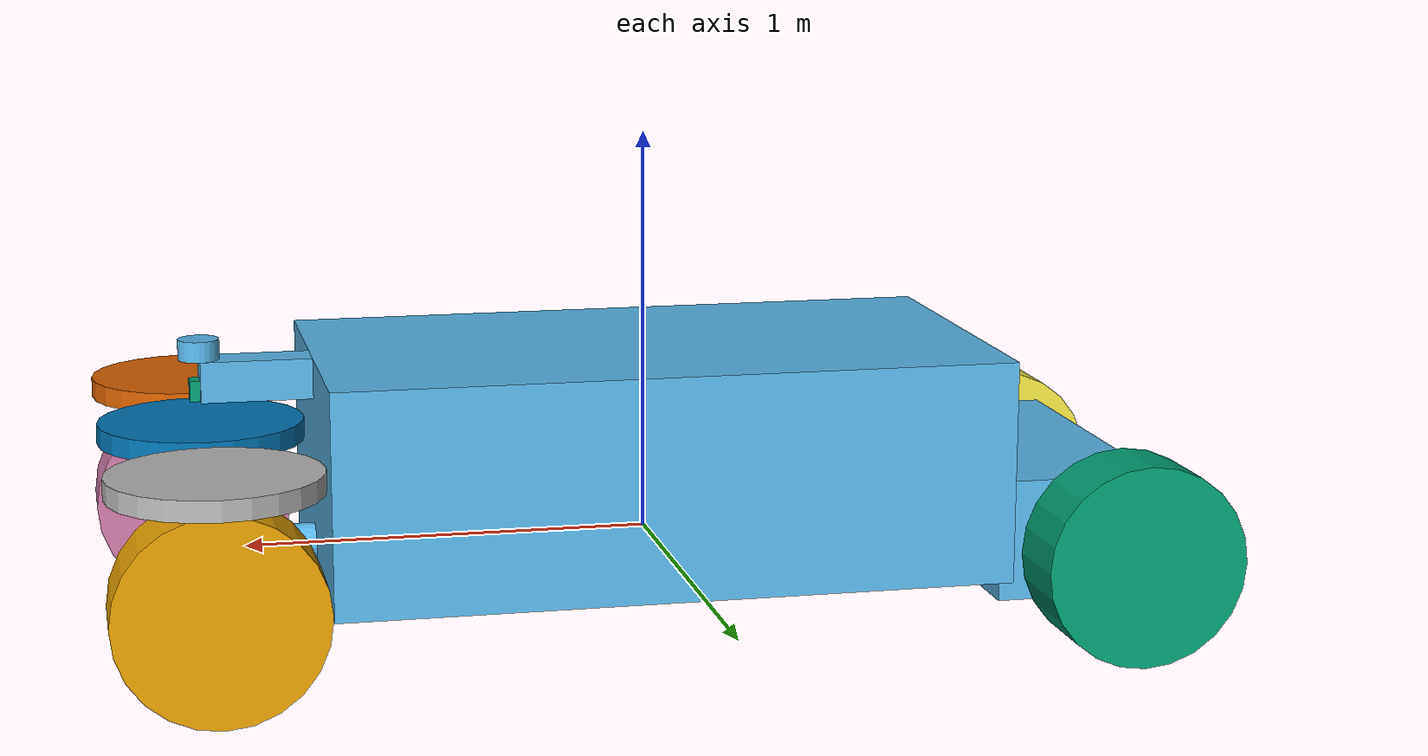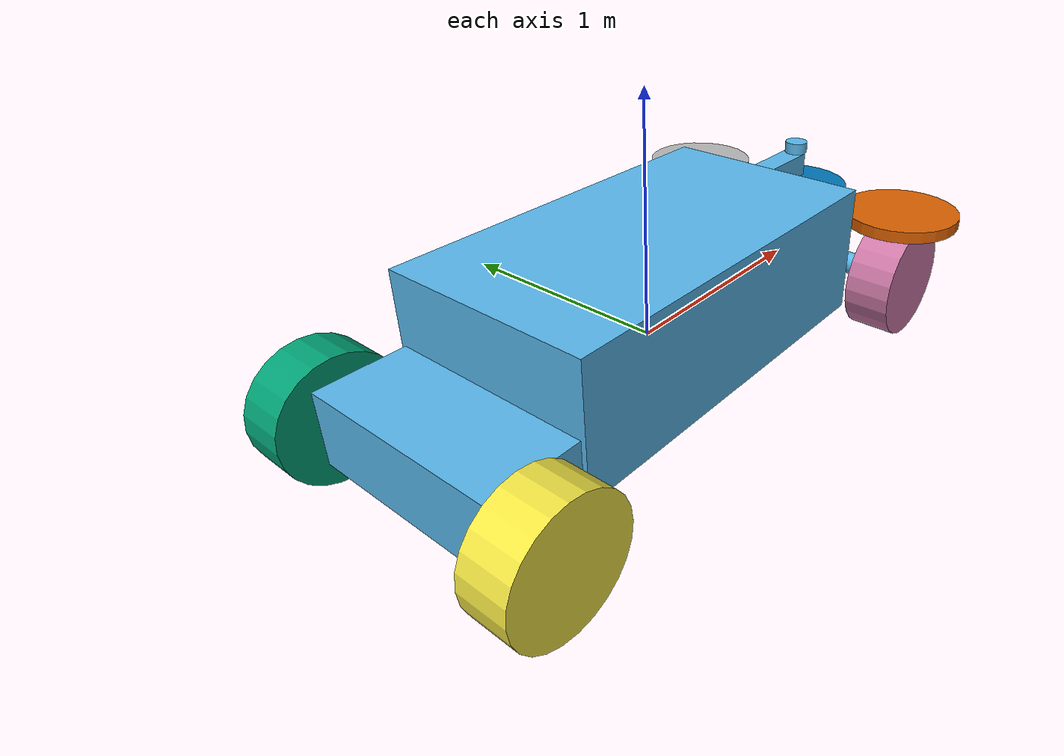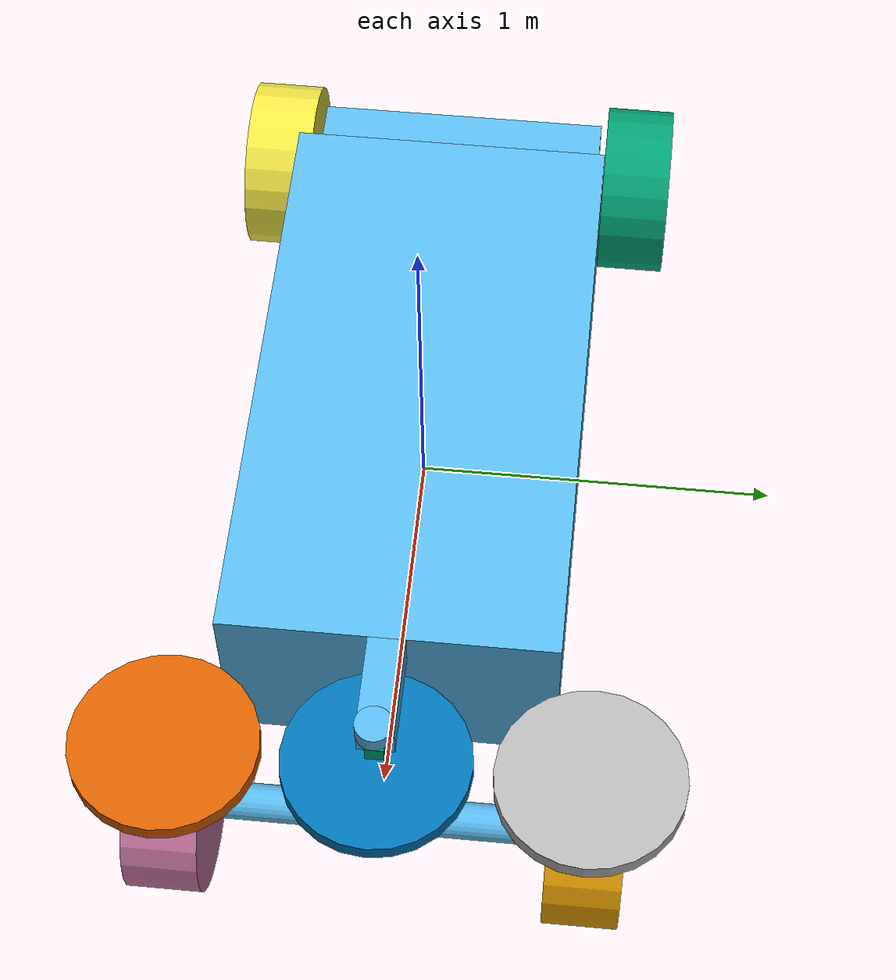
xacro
<robot name="car_like_robot">

   <!-- Base Footprint -->
   <link name="base_footprint"/>
	<!-- Base Link -->

	<link name="base_link">
		<inertial>
			<mass value="150.0" />
			<inertia ixx="0.1" ixy="0" ixz="0" iyy="0.1" iyz="0" izz="0.1" />
		</inertial>
		<visual>
			<origin xyz="0.0 0 0.2" rpy="0 0 0" />

			<geometry>
				<box size="1.66 0.9 0.55" />
			</geometry>
		</visual>
		<collision>
			<origin xyz="0.0 0 0.2" rpy="0 0 0" />

			<geometry>
				<box size="1.66 0.9 0.55" />
			</geometry>
		</collision>
		<!-- back box -->
      <visual>
			<origin xyz="-1.0 0 0.025" rpy="0 0 0" />
			<geometry>
				<box size="0.4 0.86 0.3" />
			</geometry>
		</visual>
		<collision>
			<origin xyz="-0.82 0 0.025" rpy="0 0 0" />
			<geometry>
				<box size="0.4 0.8 0.3" />
			</geometry>
		</collision>

      <visual>
			<origin xyz="1.1 0 0.0" rpy="1.57 0 0" />
			<geometry>
            <cylinder radius="0.05" length="0.9"/>
			</geometry>
		</visual>

      <visual>
			<origin xyz="0.85 0 0.0" rpy="0.0 1.57 0" />
			<geometry>
            <cylinder radius="0.05" length="0.45"/>
			</geometry>
		</visual>

      <visual>
			<origin xyz="0.85 0 0.425" rpy="0.0 1.57 0" />
			<geometry>
            <box size="0.1 0.1 0.5"/>
			</geometry>
		</visual>
  	</link>

	<joint name="base" type="fixed">
      <parent link="base_footprint"/>
      <child link="base_link"/>
      <origin xyz="0.0 0.0 0.0" rpy="0.0 0.0 0.0"/>
   </joint>

	<!-- Rear Left Wheel -->
	<link name="rear_left_wheel">
		<inertial>
			<mass value="1.0" />
			<inertia ixx="0.01" ixy="0" ixz="0" iyy="0.01" iyz="0" izz="0.01" />
		</inertial>
		<visual>
			<geometry>
				<cylinder radius="0.25" length="0.20" />
			</geometry>
		</visual>
		<collision>
			<geometry>
				<cylinder radius="0.25" length="0.20" />
			</geometry>
		</collision>
	</link>

	<joint name="rear_left_wheel_joint" type="continuous">
		<parent link="base_link" />
		<child link="rear_left_wheel" />
		<origin xyz="-1.1 0.55 0" rpy="1.57 0 0" />
		<axis xyz="0 0 1" />
	</joint>

	<!-- Rear Right Wheel -->
	<link name="rear_right_wheel">
		<inertial>
			<mass value="1.0" />
			<inertia ixx="0.01" ixy="0" ixz="0" iyy="0.01" iyz="0" izz="0.01" />
		</inertial>
		<visual>
			<geometry>
				<cylinder radius="0.25" length="0.20" />
			</geometry>
		</visual>
		<collision>
			<geometry>
				<cylinder radius="0.25" length="0.20" />
			</geometry>
		</collision>
	</link>

	<joint name="rear_right_wheel_joint" type="continuous">
		<parent link="base_link" />
		<child link="rear_right_wheel" />
		<origin xyz="-1.1 -0.55 0" rpy="1.57 0 0" />
		<axis xyz="0 0 1" />
	</joint>

	<transmission name="rear_left_wheel_joint_trans">
	<type>transmission_interface/SimpleTransmission</type>
	<actuator name="rear_left_wheel_joint_motor">
		<mechanicalReduction>1</mechanicalReduction>
		<hardwareInterface>hardware_interface/VelocityJointInterface</hardwareInterface>
	</actuator>
	<joint name="rear_left_wheel_joint">
		<hardwareInterface>hardware_interface/VelocityJointInterface</hardwareInterface>
	</joint>
	</transmission>

	<transmission name="rear_right_wheel_joint_trans">
	<type>transmission_interface/SimpleTransmission</type>
	<actuator name="rear_right_wheel_joint_motor">
		<mechanicalReduction>1</mechanicalReduction>
		<hardwareInterface>hardware_interface/VelocityJointInterface</hardwareInterface>
	</actuator>
	<joint name="rear_right_wheel_joint">
		<hardwareInterface>hardware_interface/VelocityJointInterface</hardwareInterface>
	</joint>
	</transmission>

	<!-- Front steer -->
	<link name="front_steering_wheel">
		<inertial>
			<mass value="1.0" />
			<inertia ixx="0.01" ixy="0" ixz="0" iyy="0.01" iyz="0" izz="0.01" />
		</inertial>
		<visual>
			<geometry>
				<cylinder radius="0.25" length="0.05" />
			</geometry>
		</visual>
		<collision>
			<geometry>
				<cylinder radius="0.1" length="0.05" />
			</geometry>
		</collision>
	</link>

	<joint name="front_steer_wheel_joint" type="revolute">
      <parent link="base_link" />
		<child link="front_steering_wheel" />
		<origin xyz="1.1 0.0 0.3" rpy="0 0 0" />
		<axis xyz="0 0 1" />
      <limit lower="-0.3" upper="0.3" velocity="5.0" effort="10.0"/>
	</joint>

	<link name="front_right_steer_link">
      <visual>
        <origin xyz="0 0 0" rpy="0 0 0"/>
        <geometry>
          <cylinder radius="0.25" length="0.05"/>
        </geometry>
      </visual>
      <collision>
        <origin xyz="0 0 0" rpy="0 0 0"/>
        <geometry>
          <cylinder radius="0.25" length="0.05"/>
        </geometry>
      </collision>
		<inertial>
			<mass value="1.0" />
			<inertia ixx="0.01" ixy="0" ixz="0" iyy="0.01" iyz="0" izz="0.01" />
		</inertial>
    </link>
	 <joint name="front_right_steer_joint" type="revolute">
      <parent link="base_link"/>
      <child link="front_right_steer_link"/>
      <origin xyz="1.1 -0.55 0.3" rpy="0 0 0"/>
      <axis xyz="0 0 1"/>
      <limit effort="10"
             lower="-0.35" upper="0.35"
             velocity="5.0"/>
    </joint>

	<!-- Front Right Wheel -->
	<link name="front_right_wheel">
		<inertial>
			<mass value="1.0" />
			<inertia ixx="0.01" ixy="0" ixz="0" iyy="0.01" iyz="0" izz="0.01" />
		</inertial>
		<visual>
			<geometry>
				<cylinder radius="0.25" length="0.20" />
			</geometry>
		</visual>
		<collision>
			<geometry>
				<cylinder radius="0.25" length="0.20" />
			</geometry>
		</collision>
	</link>

	<joint name="front_right_wheel_joint" type="continuous">
      <parent link="front_right_steer_link" />
		<child link="front_right_wheel" />
		<origin xyz="0 0 -0.3" rpy="1.57 0 0" />
		<axis xyz="0 0 1" />
	</joint>

	<transmission name="front_right_steer_joint_trans">
      <type>transmission_interface/SimpleTransmission</type>
      <actuator name="front_right_steer_joint_motor">
        <mechanicalReduction>1</mechanicalReduction>
        <hardwareInterface>hardware_interface/PositionJointInterface</hardwareInterface>
      </actuator>
      <joint name="front_right_steer_joint">
        <hardwareInterface>hardware_interface/PositionJointInterface</hardwareInterface>
      </joint>
    </transmission>

    <transmission name="front_right_wheel_joint_trans">
      <type>transmission_interface/SimpleTransmission</type>
      <actuator name="front_right_wheel_joint_motor">
        <mechanicalReduction>1</mechanicalReduction>
        <hardwareInterface>hardware_interface/VelocityJointInterface</hardwareInterface>
      </actuator>
      <joint name="front_right_wheel_joint">
        <hardwareInterface>hardware_interface/VelocityJointInterface</hardwareInterface>
      </joint>
    </transmission>

	<!-- Front Left Wheel -->
	<link name="front_left_steer_link">
	<visual>
		<origin xyz="0 0 0" rpy="0 0 0"/>
		<geometry>
			<cylinder radius="0.25" length="0.05"/>
		</geometry>
	</visual>
	<collision>
		<origin xyz="0 0 0" rpy="0 0 0"/>
		<geometry>
			<cylinder radius="0.25" length="0.05"/>
		</geometry>
	</collision>
	<inertial>
		<mass value="1.0" />
		<inertia ixx="0.01" ixy="0" ixz="0" iyy="0.01" iyz="0" izz="0.01" />
	</inertial>
	</link>

	<joint name="front_left_steer_joint" type="revolute">
		<parent link="base_link"/>
		<child link="front_left_steer_link"/>
		<origin xyz="1.1 0.55 0.3" rpy="0 0 0"/>
		<axis xyz="0 0 1"/>
	<limit effort="10"
				lower="-0.35" upper="0.35"
				velocity="5.0"/>
	</joint>

	<link name="front_left_wheel">
		<inertial>
			<mass value="1.0" />
			<inertia ixx="0.01" ixy="0" ixz="0" iyy="0.01" iyz="0" izz="0.01" />
		</inertial>
		<visual>
			<geometry>
				<cylinder radius="0.25" length="0.20" />
			</geometry>
		</visual>
		<collision>
			<geometry>
				<cylinder radius="0.25" length="0.20" />
			</geometry>
		</collision>
	</link>

	 <joint name="front_left_wheel_joint" type="continuous">
		 <parent link="front_left_steer_link" />
		 <child link="front_left_wheel" />
		 <origin xyz="0 0 -0.3" rpy="1.57 0 0" />
		 <axis xyz="0 0 1" />
	 </joint>

	 <transmission name="front_left_steer_joint_trans">
      <type>transmission_interface/SimpleTransmission</type>
      <actuator name="front_left_steer_joint_motor">
        <mechanicalReduction>1</mechanicalReduction>
        <hardwareInterface>hardware_interface/PositionJointInterface</hardwareInterface>
      </actuator>
      <joint name="front_left_steer_joint">
        <hardwareInterface>hardware_interface/PositionJointInterface</hardwareInterface>
      </joint>
    </transmission>

    <transmission name="front_left_wheel_joint_trans">
      <type>transmission_interface/SimpleTransmission</type>
      <actuator name="front_left_wheel_joint_motor">
        <mechanicalReduction>1</mechanicalReduction>
        <hardwareInterface>hardware_interface/VelocityJointInterface</hardwareInterface>
      </actuator>
      <joint name="front_left_wheel_joint">
        <hardwareInterface>hardware_interface/VelocityJointInterface</hardwareInterface>
      </joint>
    </transmission>

	<!-- Joints -->
	<!-- Rear Wheels (fixed, as they do not steer) -->

	<!-- Front Wheels (Ackermann steering) -->

	<!-- 3D LiDAR -->
	<link name="lidar">
		<inertial>
			<mass value="0.5" />
			<inertia ixx="0.005" ixy="0" ixz="0" iyy="0.005" iyz="0" izz="0.005" />
		</inertial>
		<visual>
			<geometry>
				<cylinder radius="0.05" length="0.05"/>
			</geometry>
		</visual>
		<collision>
			<geometry>
				<cylinder radius="0.05" length="0.05"/>
			</geometry>
		</collision>
	</link>

   <joint name="lidar_joint" type="fixed">
      <parent link="base_link"/>
      <child link="lidar"/>
      <origin xyz="1.1 0.0 0.5" rpy="0.0 0.0 0.0"/>
   </joint>

	<!-- Camera -->
	<link name="camera">
		<inertial>
			<mass value="0.2" />
			<inertia ixx="0.001" ixy="0" ixz="0" iyy="0.001" iyz="0" izz="0.001" />
		</inertial>
		<visual>
			<geometry>
				<box size="0.05 0.05 0.05" />
			</geometry>
		</visual>
		<collision>
			<geometry>
				<box size="0.05 0.05 0.05" />
			</geometry>
		</collision>
	</link>
   <joint name="camera_joint" type="fixed">
      <parent link="base_link"/>
      <child link="camera"/>
      <origin xyz="1.1 0.0 0.4" rpy="0.0 0.0 0.0"/>
   </joint>

   <!-- Gazebo Plugins -->

   <!-- Ackermann Steering Plugin -->

	<gazebo>

	<plugin name="ackermann_steering_controller" filename="libgazebo_ackermann_controller.so">
		<rosNamespace>/car_like_robot</rosNamespace>
		<updateRate>100.0</updateRate>
		<leftJoint>front_left_steer_joint</leftJoint>
		<rightJoint>front_right_steer_joint</rightJoint>
		<wheelBase>2.2</wheelBase>
		<wheelTrack>1.1</wheelTrack>
		<wheelRadius>0.25</wheelRadius>
		<cmdVelTopic>cmd_vel</cmdVelTopic>
		<odomFrame>odom</odomFrame>
		<baseFrame>base_link</baseFrame>
		<publishWheelTF>true</publishWheelTF>
		<publishWheelJointState>true</publishWheelJointState>
	</plugin>

    </gazebo>

</robot>
